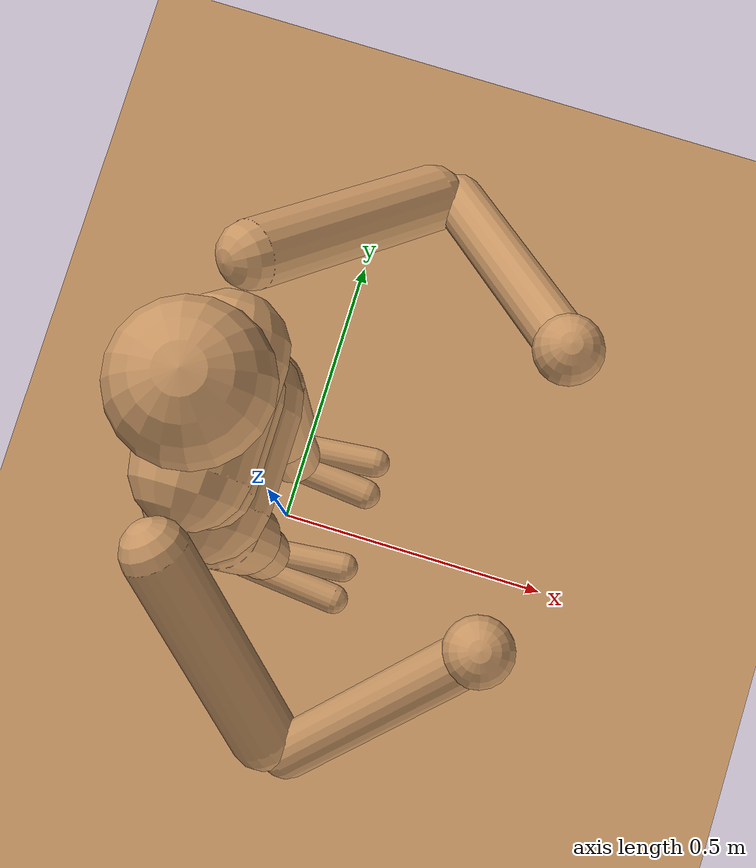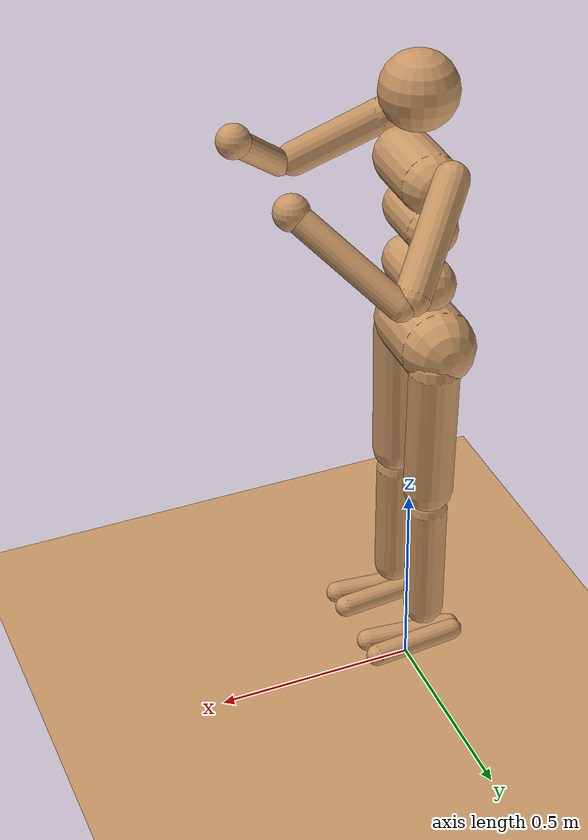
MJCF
<mujoco model='humanoid'>
    <compiler inertiafromgeom='true' angle='degree'/>

    <default>
        <joint limited='true' damping='1' armature='0'/>
        <geom contype='1' conaffinity='1' condim='1' rgba='0.8 0.6 .4 1'
        	margin="0.001" solref=".02 1" solimp=".8 .8 .01" material="geom"/>
        <motor ctrlrange='-.4 .4' ctrllimited='true'/>
    </default>

    <option timestep='0.002' iterations="50" solver="PGS">
        <!--flag energy="enable" fwdinv="enable"/-->
    </option>

    <visual>
        <map fogstart="3" fogend="5" force="0.1" znear="0.5"/>
        <quality shadowsize="2048" offsamples="8"/>
        <global offwidth="800" offheight="800"/>
    </visual>

    <size nuserdata="5"/>

    <asset>
        <texture type="skybox" builtin="gradient" width="128" height="128" rgb1=".4 .6 .8"
            rgb2="0 0 0"/>
        <texture name="texgeom" type="cube" builtin="flat" mark="cross" width="127" height="1278"
            rgb1="0.8 0.6 0.4" rgb2="0.8 0.6 0.4" markrgb="1 1 1" random="0.01"/>
        <texture name="texplane" type="2d" builtin="checker" rgb1=".2 .3 .4" rgb2=".1 0.15 0.2"
            width="512" height="512"/>

        <material name='MatPlane' reflectance='0.3' texture="texplane" texrepeat="1 1" texuniform="true"/>
        <material name='geom' texture="texgeom" texuniform="true"/>
    </asset>

    <worldbody>
        <geom name='floor' pos='0 0 0' size='5 5 .125' type='plane' material="MatPlane" condim='3'/>

        <light mode='targetbodycom' target='torso' directional='false' diffuse='.8 .8 .8' specular='0.3 0.3 0.3' pos='0 0 4.0' dir='0 0 -1'/>

		<camera name='targeting' pos='1 1 2' mode='targetbodycom' target='torso'/>

        <body name='torso' pos='0 0 1.4'>

			<camera name='tracking' pos='1 1 2' zaxis="1 2 3" mode='trackcom'/>

            <joint name='root' type='free' pos='0 0 0' limited='false' damping='0' armature='0' stiffness='0'/>

            <geom name='torso1' type='capsule' fromto='0 -.07 0 0 .07 0'  size='0.07'/>
            <geom name='head' type='sphere' pos='0 0 .19' size='.09'/>
            <site name="imu" type='sphere' pos='0 0 .19' size='.09' rgba='1 0 0 1' />

            <geom name='uwaist' type='capsule' fromto='-.01 -.06 -.12 -.01 .06 -.12' size='0.06'/>
            <body name='lwaist' pos='-.01 0 -0.260' quat='1.000 0 -0.002 0' >
                <geom name='lwaist' type='capsule' fromto='0 -.06 0 0 .06 0'  size='0.06' />
                <joint name='abdomen_z' type='hinge' pos='0 0 0.065' axis='0 0 1' range='-45 45' damping='5' stiffness='20' armature='0.02' />
                <joint name='abdomen_y' type='hinge' pos='0 0 0.065' axis='0 1 0' range='-75 30' damping='5' stiffness='10' armature='0.02' />
                <body name='pelvis' pos='0 0 -0.165' quat='1.000 0 -0.002 0' >
                    <joint name='abdomen_x' type='hinge' pos='0 0 0.1' axis='1 0 0' range='-35 35' damping='5' stiffness='10' armature='0.02' />
                    <geom name='butt' type='capsule' fromto='-.02 -.07 0 -.02 .07 0'  size='0.09' />
                    <body name='right_thigh' pos='0 -0.1 -0.04' >
                        <joint name='right_hip_x' type='hinge' pos='0 0 0' axis='1 0 0' range='-25 5'   damping='5' stiffness='10' armature='0.01' />
                        <joint name='right_hip_z' type='hinge' pos='0 0 0' axis='0 0 1' range='-60 35'  damping='5' stiffness='10' armature='0.01' />
                        <joint name='right_hip_y' type='hinge' pos='0 0 0' axis='0 1 0' range='-120 20' damping='5' stiffness='20' armature='0.01' />
                        <geom name='right_thigh1' type='capsule' fromto='0 0 0 0 0.01 -.34'  size='0.06' />
                        <body name='right_shin' pos='0 0.01 -0.403' >
                            <joint name='right_knee' type='hinge' pos='0 0 .02' axis='0 -1 0' range='-160 -2' stiffness='1' armature='0.0060' />
                            <geom name='right_shin1' type='capsule' fromto='0 0 0 0 0 -.3'   size='0.049' />
                            <body name='right_foot' pos='0 0 -.39' >
                                <joint name='right_ankle_y' type='hinge' pos='0 0 0.08' axis='0 1 0'   range='-50 50' stiffness='4' armature='0.0008' />
                                <joint name='right_ankle_x' type='hinge' pos='0 0 0.04' axis='1 0 0.5' range='-50 50' stiffness='1'  armature='0.0006' />
                                <geom name='right_foot_cap1' type='capsule' fromto='-.07 -0.02 0 0.14 -0.04 0'  size='0.027' />
                                <geom name='right_foot_cap2' type='capsule' fromto='-.07 0 0 0.14  0.02 0'  size='0.027' />
                            </body>
                        </body>
                    </body>
                    <body name='left_thigh' pos='0 0.1 -0.04' >
                        <joint name='left_hip_x' type='hinge' pos='0 0 0' axis='-1 0 0' range='-25 5'  damping='5' stiffness='10' armature='0.01' />
                        <joint name='left_hip_z' type='hinge' pos='0 0 0' axis='0 0 -1' range='-60 35' damping='5' stiffness='10' armature='0.01' />
                        <joint name='left_hip_y' type='hinge' pos='0 0 0' axis='0 1 0' range='-120 20' damping='5' stiffness='20' armature='0.01' />
                        <geom name='left_thigh1' type='capsule' fromto='0 0 0 0 -0.01 -.34'  size='0.06' />
                        <body name='left_shin' pos='0 -0.01 -0.403' >
                            <joint name='left_knee' type='hinge' pos='0 0 .02' axis='0 -1 0' range='-160 -2' stiffness='1' armature='0.0060' />
                            <geom name='left_shin1' type='capsule' fromto='0 0 0 0 0 -.3'   size='0.049' />
                            <body name='left_foot' pos='0 0 -.39' >
                                <joint name='left_ankle_y' type='hinge' pos='0 0 0.08' axis='0 1 0'   range='-50 50'  stiffness='4' armature='0.0008' />
                                <joint name='left_ankle_x' type='hinge' pos='0 0 0.04' axis='1 0 0.5' range='-50 50'  stiffness='1'  armature='0.0006' />
                                <geom name='left_foot_cap1' type='capsule' fromto='-.07 0.02 0 0.14 0.04 0'  size='0.027' />
                                <geom name='left_foot_cap2' type='capsule' fromto='-.07 0 0 0.14  -0.02 0'  size='0.027' />
                            </body>
                        </body>
                    </body>
                </body>
            </body>
            <body name='right_upper_arm' pos='0 -0.17 0.06' >
                <joint name='right_shoulder1' type='hinge' pos='0 0 0' axis='2 1 1'  range='-85 60' stiffness='1' armature='0.0068' />
                <joint name='right_shoulder2' type='hinge' pos='0 0 0' axis='0 -1 1' range='-85 60' stiffness='1'  armature='0.0051' />
                <geom name='right_uarm1' type='capsule' fromto='0 0 0 .16 -.16 -.16'  size='0.04 0.16' />
                <body name='right_lower_arm' pos='.18 -.18 -.18' >
                    <joint name='right_elbow' type='hinge' pos='0 0 0' axis='0 -1 1' range='-90 50'  stiffness='0' armature='0.0028' />
                    <geom name='right_larm' type='capsule' fromto='0.01 0.01 0.01 .17 .17 .17'  size='0.031' />
                    <geom name='right_hand' type='sphere' pos='.18 .18 .18'  size='0.04'/>
                </body>
            </body>
            <body name='left_upper_arm' pos='0 0.17 0.06' >
                <joint name='left_shoulder1' type='hinge' pos='0 0 0' axis='2 -1 1' range='-60 85' stiffness='1' armature='0.0068' />
                <joint name='left_shoulder2' type='hinge' pos='0 0 0' axis='0 1 1' range='-60 85'  stiffness='1' armature='0.0051' />
                <geom name='left_uarm1' type='capsule' fromto='0 0 0 .16 .16 -.16'  size='0.04 0.16' />
                <body name='left_lower_arm' pos='.18 .18 -.18' >
                    <joint name='left_elbow' type='hinge' pos='0 0 0' axis='0 -1 -1' range='-90 50' stiffness='0' armature='0.0028' />
                    <geom name='left_larm' type='capsule' fromto='0.01 -0.01 0.01 .17 -.17 .17'  size='0.031' />
                    <geom name='left_hand' type='sphere' pos='.18 -.18 .18'  size='0.04'/>
                </body>
            </body>
        </body>
    </worldbody>

    <sensor>
        <jointpos name='pos_right_hip_x'     joint='right_hip_x'   />
        <jointpos name='pos_right_hip_z'     joint='right_hip_z'   />
        <jointpos name='pos_right_hip_y'     joint='right_hip_y'   />
        <jointpos name='pos_right_knee'      joint='right_knee'   />
        <jointpos name='pos_right_ankle_x'   joint='right_ankle_x' />
        <jointpos name='pos_right_ankle_y'   joint='right_ankle_y'  />
        <jointpos name='pos_left_hip_x'      joint='left_hip_x'   />
        <jointpos name='pos_left_hip_z'      joint='left_hip_z'   />
        <jointpos name='pos_left_hip_y'      joint='left_hip_y'   />
        <jointpos name='pos_left_knee'       joint='left_knee'   />
        <jointpos name='pos_left_ankle_x'    joint='left_ankle_x'  />
        <jointpos name='pos_left_ankle_y'    joint='left_ankle_y'   />
        <jointpos name='pos_right_shoulder1' joint='right_shoulder1' />
        <jointpos name='pos_right_shoulder2' joint='right_shoulder2'  />
        <jointpos name='pos_right_elbow'     joint='right_elbow'   />
        <jointpos name='pos_left_shoulder1'  joint='left_shoulder1' />
        <jointpos name='pos_left_shoulder2'  joint='left_shoulder2'  />
        <jointpos name='pos_left_elbow'      joint='left_elbow'  />

        <jointvel name='vel_right_hip_x'     joint='right_hip_x'   />
        <jointvel name='vel_right_hip_z'     joint='right_hip_z'   />
        <jointvel name='vel_right_hip_y'     joint='right_hip_y'   />
        <jointvel name='vel_right_knee'      joint='right_knee'   />
        <jointvel name='vel_right_ankle_x'   joint='right_ankle_x' />
        <jointvel name='vel_right_ankle_y'   joint='right_ankle_y'  />
        <jointvel name='vel_left_hip_x'      joint='left_hip_x'   />
        <jointvel name='vel_left_hip_z'      joint='left_hip_z'   />
        <jointvel name='vel_left_hip_y'      joint='left_hip_y'   />
        <jointvel name='vel_left_knee'       joint='left_knee'   />
        <jointvel name='vel_left_ankle_x'    joint='left_ankle_x'  />
        <jointvel name='vel_left_ankle_y'    joint='left_ankle_y'   />
        <jointvel name='vel_right_shoulder1' joint='right_shoulder1' />
        <jointvel name='vel_right_shoulder2' joint='right_shoulder2'  />
        <jointvel name='vel_right_elbow'     joint='right_elbow'   />
        <jointvel name='vel_left_shoulder1'  joint='left_shoulder1' />
        <jointvel name='vel_left_shoulder2'  joint='left_shoulder2'  />
        <jointvel name='vel_left_elbow'      joint='left_elbow'  />

        <accelerometer name="accel"  site="imu" />
        <gyro name="gyro"            site="imu" />
    </sensor>

    <actuator>
        <motor name='abdomen_y'       gear='200' joint='abdomen_y' />
        <motor name='abdomen_z'       gear='200' joint='abdomen_z' />
        <motor name='abdomen_x'       gear='200' joint='abdomen_x' />
        <motor name='right_hip_x'     gear='200' joint='right_hip_x' />
        <motor name='right_hip_z'     gear='200' joint='right_hip_z' />
        <motor name='right_hip_y'     gear='600' joint='right_hip_y' />
        <motor name='right_knee'      gear='400' joint='right_knee' />
        <motor name='right_ankle_x'   gear='100' joint='right_ankle_x' />
        <motor name='right_ankle_y'   gear='100' joint='right_ankle_y' />
        <motor name='left_hip_x'      gear='200' joint='left_hip_x' />
        <motor name='left_hip_z'      gear='200' joint='left_hip_z' />
        <motor name='left_hip_y'      gear='600' joint='left_hip_y' />
        <motor name='left_knee'       gear='400' joint='left_knee' />
        <motor name='left_ankle_x'    gear='100' joint='left_ankle_x' />
        <motor name='left_ankle_y'    gear='100' joint='left_ankle_y' />
        <motor name='right_shoulder1' gear='100' joint='right_shoulder1' />
        <motor name='right_shoulder2' gear='100' joint='right_shoulder2' />
        <motor name='right_elbow'     gear='200' joint='right_elbow' />
        <motor name='left_shoulder1'  gear='100' joint='left_shoulder1' />
        <motor name='left_shoulder2'  gear='100' joint='left_shoulder2' />
        <motor name='left_elbow'      gear='200' joint='left_elbow' />
    </actuator>

</mujoco>
